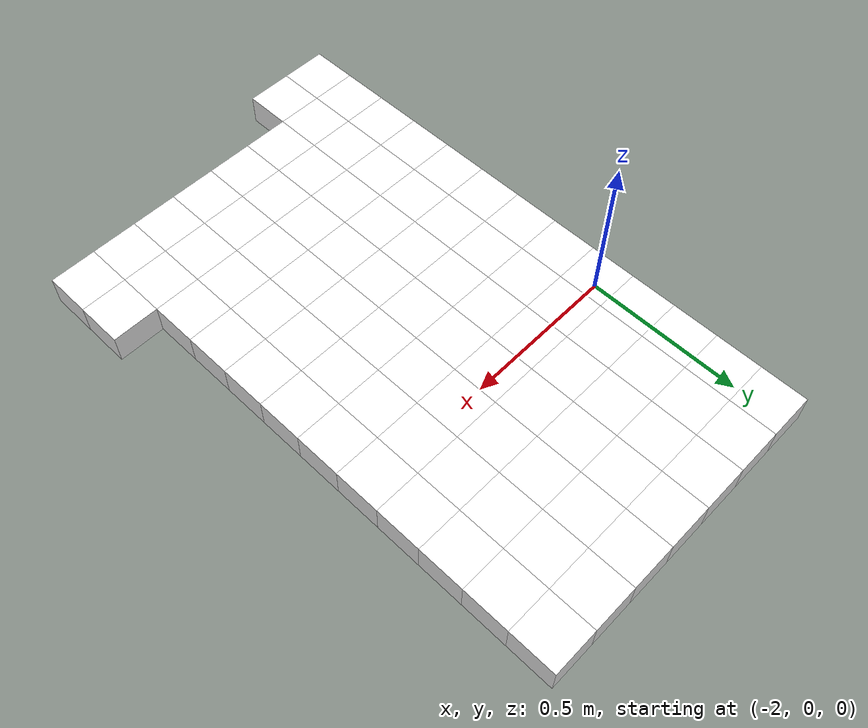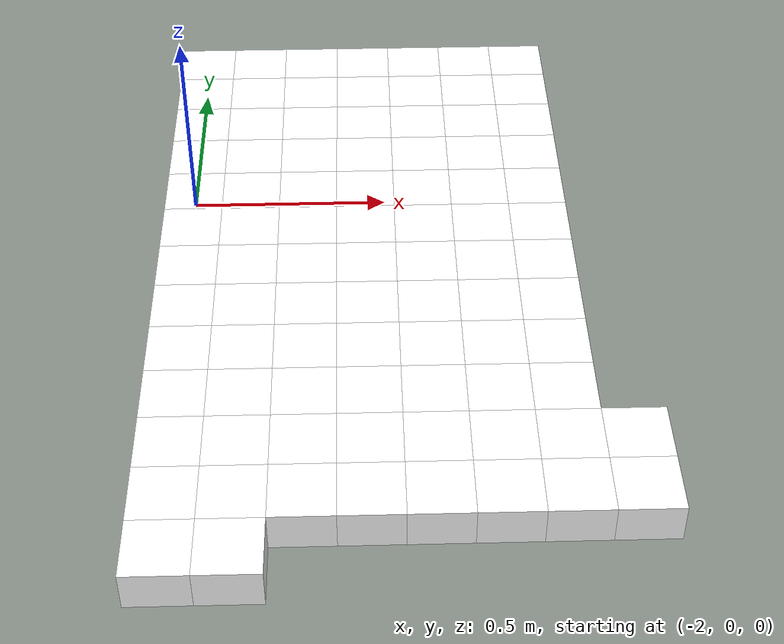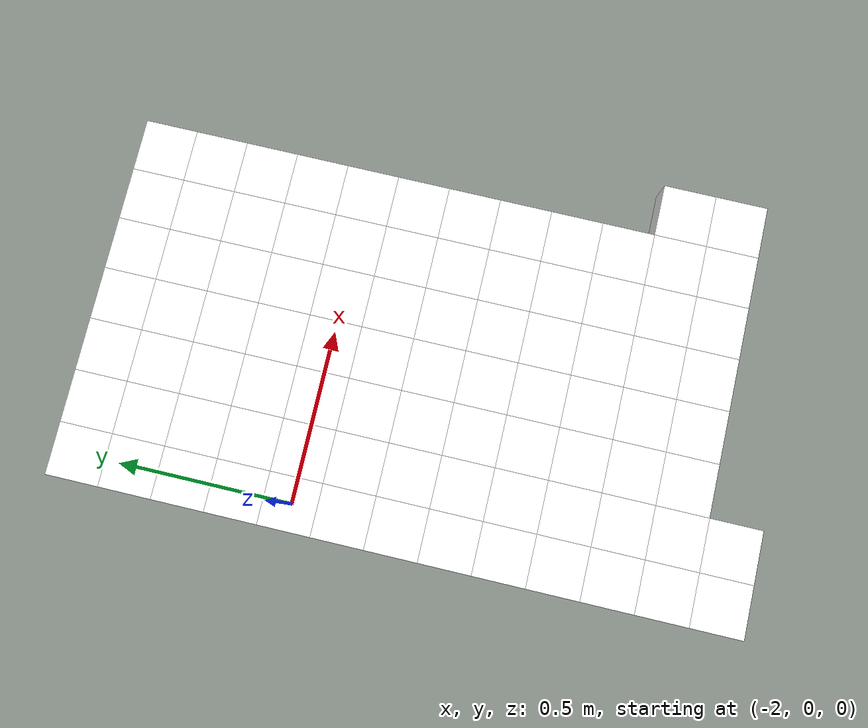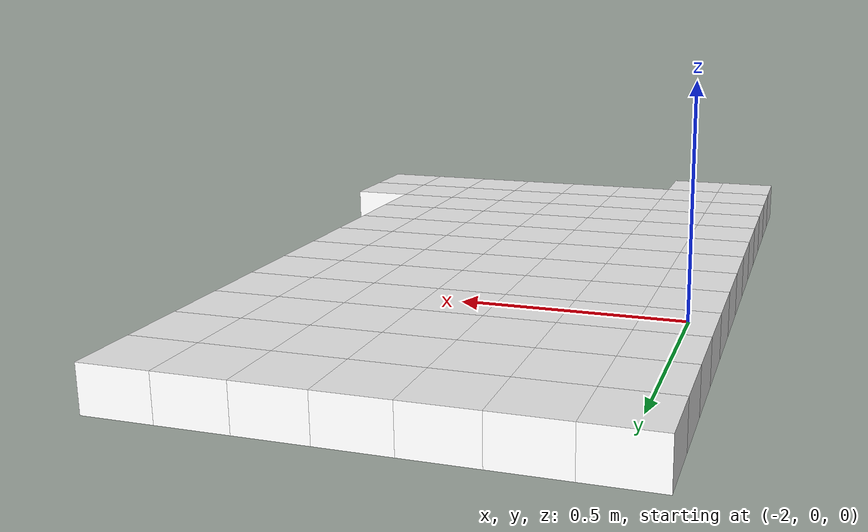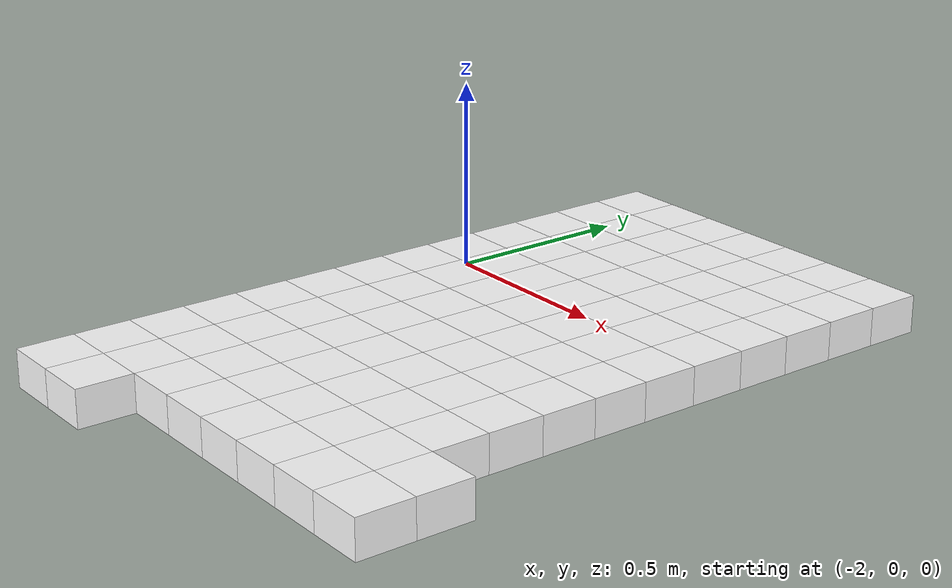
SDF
<sdf version="1.7">
 <world name="default">
  <include><uri>model://sun</uri></include>
  <model name="static_environment">
   <static>true</static>
   <link name="region_0">
    <pose>-2.0 0.6 0.0 0.0 0.0 4.7123</pose>
    <collision name="region_0_collision">
     <geometry><box><size>0.15 0.15 0.1</size></box></geometry>
     <surface><friction><ode><mu>1.0</mu><mu2>1.0</mu2></ode></friction></surface>
    </collision>
    <visual name="region_0_visual">
     <geometry><box><size>0.15 0.15 0.1</size></box></geometry>
     <material><ambient>1.0 1.0 1.0 1.0</ambient><diffuse>1.0 1.0 1.0 1.0</diffuse></material>
    </visual>
   </link>
   <link name="region_1">
    <pose>-2.0000133470576857 0.4500000005938132 0.0 0.0 0.0 4.7123</pose>
    <collision name="region_1_collision">
     <geometry><box><size>0.15 0.15 0.1</size></box></geometry>
     <surface><friction><ode><mu>1.0</mu><mu2>1.0</mu2></ode></friction></surface>
    </collision>
    <visual name="region_1_visual">
     <geometry><box><size>0.15 0.15 0.1</size></box></geometry>
     <material><ambient>1.0 1.0 1.0 1.0</ambient><diffuse>1.0 1.0 1.0 1.0</diffuse></material>
    </visual>
   </link>
   <link name="region_2">
    <pose>-2.000026694115372 0.3000000011876264 0.0 0.0 0.0 4.7123</pose>
    <collision name="region_2_collision">
     <geometry><box><size>0.15 0.15 0.1</size></box></geometry>
     <surface><friction><ode><mu>1.0</mu><mu2>1.0</mu2></ode></friction></surface>
    </collision>
    <visual name="region_2_visual">
     <geometry><box><size>0.15 0.15 0.1</size></box></geometry>
     <material><ambient>1.0 1.0 1.0 1.0</ambient><diffuse>1.0 1.0 1.0 1.0</diffuse></material>
    </visual>
   </link>
   <link name="region_3">
    <pose>-2.0000400411730577 0.15000000178143957 0.0 0.0 0.0 4.7123</pose>
    <collision name="region_3_collision">
     <geometry><box><size>0.15 0.15 0.1</size></box></geometry>
     <surface><friction><ode><mu>1.0</mu><mu2>1.0</mu2></ode></friction></surface>
    </collision>
    <visual name="region_3_visual">
     <geometry><box><size>0.15 0.15 0.1</size></box></geometry>
     <material><ambient>1.0 1.0 1.0 1.0</ambient><diffuse>1.0 1.0 1.0 1.0</diffuse></material>
    </visual>
   </link>
   <link name="region_4">
    <pose>-2.0000533882307434 2.3752527722464833e-09 0.0 0.0 0.0 4.7123</pose>
    <collision name="region_4_collision">
     <geometry><box><size>0.15 0.15 0.1</size></box></geometry>
     <surface><friction><ode><mu>1.0</mu><mu2>1.0</mu2></ode></friction></surface>
    </collision>
    <visual name="region_4_visual">
     <geometry><box><size>0.15 0.15 0.1</size></box></geometry>
     <material><ambient>1.0 1.0 1.0 1.0</ambient><diffuse>1.0 1.0 1.0 1.0</diffuse></material>
    </visual>
   </link>
   <link name="region_5">
    <pose>-2.0000667352884296 -0.14999999703093414 0.0 0.0 0.0 4.7123</pose>
    <collision name="region_5_collision">
     <geometry><box><size>0.15 0.15 0.1</size></box></geometry>
     <surface><friction><ode><mu>1.0</mu><mu2>1.0</mu2></ode></friction></surface>
    </collision>
    <visual name="region_5_visual">
     <geometry><box><size>0.15 0.15 0.1</size></box></geometry>
     <material><ambient>1.0 1.0 1.0 1.0</ambient><diffuse>1.0 1.0 1.0 1.0</diffuse></material>
    </visual>
   </link>
   <link name="region_6">
    <pose>-2.0000800823461153 -0.29999999643712094 0.0 0.0 0.0 4.7123</pose>
    <collision name="region_6_collision">
     <geometry><box><size>0.15 0.15 0.1</size></box></geometry>
     <surface><friction><ode><mu>1.0</mu><mu2>1.0</mu2></ode></friction></surface>
    </collision>
    <visual name="region_6_visual">
     <geometry><box><size>0.15 0.15 0.1</size></box></geometry>
     <material><ambient>1.0 1.0 1.0 1.0</ambient><diffuse>1.0 1.0 1.0 1.0</diffuse></material>
    </visual>
   </link>
   <link name="region_7">
    <pose>-2.000093429403801 -0.44999999584330774 0.0 0.0 0.0 4.7123</pose>
    <collision name="region_7_collision">
     <geometry><box><size>0.15 0.15 0.1</size></box></geometry>
     <surface><friction><ode><mu>1.0</mu><mu2>1.0</mu2></ode></friction></surface>
    </collision>
    <visual name="region_7_visual">
     <geometry><box><size>0.15 0.15 0.1</size></box></geometry>
     <material><ambient>1.0 1.0 1.0 1.0</ambient><diffuse>1.0 1.0 1.0 1.0</diffuse></material>
    </visual>
   </link>
   <link name="region_8">
    <pose>-2.000106776461487 -0.5999999952494944 0.0 0.0 0.0 4.7123</pose>
    <collision name="region_8_collision">
     <geometry><box><size>0.15 0.15 0.1</size></box></geometry>
     <surface><friction><ode><mu>1.0</mu><mu2>1.0</mu2></ode></friction></surface>
    </collision>
    <visual name="region_8_visual">
     <geometry><box><size>0.15 0.15 0.1</size></box></geometry>
     <material><ambient>1.0 1.0 1.0 1.0</ambient><diffuse>1.0 1.0 1.0 1.0</diffuse></material>
    </visual>
   </link>
   <link name="region_9">
    <pose>-2.000120123519173 -0.7499999946556813 0.0 0.0 0.0 4.7123</pose>
    <collision name="region_9_collision">
     <geometry><box><size>0.15 0.15 0.1</size></box></geometry>
     <surface><friction><ode><mu>1.0</mu><mu2>1.0</mu2></ode></friction></surface>
    </collision>
    <visual name="region_9_visual">
     <geometry><box><size>0.15 0.15 0.1</size></box></geometry>
     <material><ambient>1.0 1.0 1.0 1.0</ambient><diffuse>1.0 1.0 1.0 1.0</diffuse></material>
    </visual>
   </link>
   <link name="region_10">
    <pose>-2.0001334705768588 -0.899999994061868 0.0 0.0 0.0 4.7123</pose>
    <collision name="region_10_collision">
     <geometry><box><size>0.15 0.15 0.1</size></box></geometry>
     <surface><friction><ode><mu>1.0</mu><mu2>1.0</mu2></ode></friction></surface>
    </collision>
    <visual name="region_10_visual">
     <geometry><box><size>0.15 0.15 0.1</size></box></geometry>
     <material><ambient>1.0 1.0 1.0 1.0</ambient><diffuse>1.0 1.0 1.0 1.0</diffuse></material>
    </visual>
   </link>
   <link name="region_11">
    <pose>-2.0001468176345445 -1.0499999934680546 0.0 0.0 0.0 4.7123</pose>
    <collision name="region_11_collision">
     <geometry><box><size>0.15 0.15 0.1</size></box></geometry>
     <surface><friction><ode><mu>1.0</mu><mu2>1.0</mu2></ode></friction></surface>
    </collision>
    <visual name="region_11_visual">
     <geometry><box><size>0.15 0.15 0.1</size></box></geometry>
     <material><ambient>1.0 1.0 1.0 1.0</ambient><diffuse>1.0 1.0 1.0 1.0</diffuse></material>
    </visual>
   </link>
   <link name="region_12">
    <pose>-2.0001601646922307 -1.1999999928742415 0.0 0.0 0.0 4.7123</pose>
    <collision name="region_12_collision">
     <geometry><box><size>0.15 0.15 0.1</size></box></geometry>
     <surface><friction><ode><mu>1.0</mu><mu2>1.0</mu2></ode></friction></surface>
    </collision>
    <visual name="region_12_visual">
     <geometry><box><size>0.15 0.15 0.1</size></box></geometry>
     <material><ambient>1.0 1.0 1.0 1.0</ambient><diffuse>1.0 1.0 1.0 1.0</diffuse></material>
    </visual>
   </link>
   <link name="region_20">
    <pose>-1.850000000593813 0.5999866529423141 0.0 0.0 0.0 4.7123</pose>
    <collision name="region_20_collision">
     <geometry><box><size>0.15 0.15 0.1</size></box></geometry>
     <surface><friction><ode><mu>1.0</mu><mu2>1.0</mu2></ode></friction></surface>
    </collision>
    <visual name="region_20_visual">
     <geometry><box><size>0.15 0.15 0.1</size></box></geometry>
     <material><ambient>1.0 1.0 1.0 1.0</ambient><diffuse>1.0 1.0 1.0 1.0</diffuse></material>
    </visual>
   </link>
   <link name="region_21">
    <pose>-1.850013347651499 0.4499866535361273 0.0 0.0 0.0 4.7123</pose>
    <collision name="region_21_collision">
     <geometry><box><size>0.15 0.15 0.1</size></box></geometry>
     <surface><friction><ode><mu>1.0</mu><mu2>1.0</mu2></ode></friction></surface>
    </collision>
    <visual name="region_21_visual">
     <geometry><box><size>0.15 0.15 0.1</size></box></geometry>
     <material><ambient>1.0 1.0 1.0 1.0</ambient><diffuse>1.0 1.0 1.0 1.0</diffuse></material>
    </visual>
   </link>
   <link name="region_22">
    <pose>-1.850026694709185 0.29998665412994047 0.0 0.0 0.0 4.7123</pose>
    <collision name="region_22_collision">
     <geometry><box><size>0.15 0.15 0.1</size></box></geometry>
     <surface><friction><ode><mu>1.0</mu><mu2>1.0</mu2></ode></friction></surface>
    </collision>
    <visual name="region_22_visual">
     <geometry><box><size>0.15 0.15 0.1</size></box></geometry>
     <material><ambient>1.0 1.0 1.0 1.0</ambient><diffuse>1.0 1.0 1.0 1.0</diffuse></material>
    </visual>
   </link>
   <link name="region_23">
    <pose>-1.8500400417668708 0.14998665472375367 0.0 0.0 0.0 4.7123</pose>
    <collision name="region_23_collision">
     <geometry><box><size>0.15 0.15 0.1</size></box></geometry>
     <surface><friction><ode><mu>1.0</mu><mu2>1.0</mu2></ode></friction></surface>
    </collision>
    <visual name="region_23_visual">
     <geometry><box><size>0.15 0.15 0.1</size></box></geometry>
     <material><ambient>1.0 1.0 1.0 1.0</ambient><diffuse>1.0 1.0 1.0 1.0</diffuse></material>
    </visual>
   </link>
   <link name="region_24">
    <pose>-1.8500533888245567 -1.3344682433191757e-05 0.0 0.0 0.0 4.7123</pose>
    <collision name="region_24_collision">
     <geometry><box><size>0.15 0.15 0.1</size></box></geometry>
     <surface><friction><ode><mu>1.0</mu><mu2>1.0</mu2></ode></friction></surface>
    </collision>
    <visual name="region_24_visual">
     <geometry><box><size>0.15 0.15 0.1</size></box></geometry>
     <material><ambient>1.0 1.0 1.0 1.0</ambient><diffuse>1.0 1.0 1.0 1.0</diffuse></material>
    </visual>
   </link>
   <link name="region_25">
    <pose>-1.8500667358822427 -0.15001334408862 0.0 0.0 0.0 4.7123</pose>
    <collision name="region_25_collision">
     <geometry><box><size>0.15 0.15 0.1</size></box></geometry>
     <surface><friction><ode><mu>1.0</mu><mu2>1.0</mu2></ode></friction></surface>
    </collision>
    <visual name="region_25_visual">
     <geometry><box><size>0.15 0.15 0.1</size></box></geometry>
     <material><ambient>1.0 1.0 1.0 1.0</ambient><diffuse>1.0 1.0 1.0 1.0</diffuse></material>
    </visual>
   </link>
   <link name="region_26">
    <pose>-1.8500800829399284 -0.3000133434948068 0.0 0.0 0.0 4.7123</pose>
    <collision name="region_26_collision">
     <geometry><box><size>0.15 0.15 0.1</size></box></geometry>
     <surface><friction><ode><mu>1.0</mu><mu2>1.0</mu2></ode></friction></surface>
    </collision>
    <visual name="region_26_visual">
     <geometry><box><size>0.15 0.15 0.1</size></box></geometry>
     <material><ambient>1.0 1.0 1.0 1.0</ambient><diffuse>1.0 1.0 1.0 1.0</diffuse></material>
    </visual>
   </link>
   <link name="region_27">
    <pose>-1.8500934299976144 -0.4500133429009937 0.0 0.0 0.0 4.7123</pose>
    <collision name="region_27_collision">
     <geometry><box><size>0.15 0.15 0.1</size></box></geometry>
     <surface><friction><ode><mu>1.0</mu><mu2>1.0</mu2></ode></friction></surface>
    </collision>
    <visual name="region_27_visual">
     <geometry><box><size>0.15 0.15 0.1</size></box></geometry>
     <material><ambient>1.0 1.0 1.0 1.0</ambient><diffuse>1.0 1.0 1.0 1.0</diffuse></material>
    </visual>
   </link>
   <link name="region_28">
    <pose>-1.8501067770553001 -0.6000133423071804 0.0 0.0 0.0 4.7123</pose>
    <collision name="region_28_collision">
     <geometry><box><size>0.15 0.15 0.1</size></box></geometry>
     <surface><friction><ode><mu>1.0</mu><mu2>1.0</mu2></ode></friction></surface>
    </collision>
    <visual name="region_28_visual">
     <geometry><box><size>0.15 0.15 0.1</size></box></geometry>
     <material><ambient>1.0 1.0 1.0 1.0</ambient><diffuse>1.0 1.0 1.0 1.0</diffuse></material>
    </visual>
   </link>
   <link name="region_29">
    <pose>-1.850120124112986 -0.7500133417133671 0.0 0.0 0.0 4.7123</pose>
    <collision name="region_29_collision">
     <geometry><box><size>0.15 0.15 0.1</size></box></geometry>
     <surface><friction><ode><mu>1.0</mu><mu2>1.0</mu2></ode></friction></surface>
    </collision>
    <visual name="region_29_visual">
     <geometry><box><size>0.15 0.15 0.1</size></box></geometry>
     <material><ambient>1.0 1.0 1.0 1.0</ambient><diffuse>1.0 1.0 1.0 1.0</diffuse></material>
    </visual>
   </link>
   <link name="region_30">
    <pose>-1.8501334711706718 -0.9000133411195538 0.0 0.0 0.0 4.7123</pose>
    <collision name="region_30_collision">
     <geometry><box><size>0.15 0.15 0.1</size></box></geometry>
     <surface><friction><ode><mu>1.0</mu><mu2>1.0</mu2></ode></friction></surface>
    </collision>
    <visual name="region_30_visual">
     <geometry><box><size>0.15 0.15 0.1</size></box></geometry>
     <material><ambient>1.0 1.0 1.0 1.0</ambient><diffuse>1.0 1.0 1.0 1.0</diffuse></material>
    </visual>
   </link>
   <link name="region_31">
    <pose>-1.8501468182283578 -1.0500133405257408 0.0 0.0 0.0 4.7123</pose>
    <collision name="region_31_collision">
     <geometry><box><size>0.15 0.15 0.1</size></box></geometry>
     <surface><friction><ode><mu>1.0</mu><mu2>1.0</mu2></ode></friction></surface>
    </collision>
    <visual name="region_31_visual">
     <geometry><box><size>0.15 0.15 0.1</size></box></geometry>
     <material><ambient>1.0 1.0 1.0 1.0</ambient><diffuse>1.0 1.0 1.0 1.0</diffuse></material>
    </visual>
   </link>
   <link name="region_32">
    <pose>-1.8501601652860438 -1.2000133399319273 0.0 0.0 0.0 4.7123</pose>
    <collision name="region_32_collision">
     <geometry><box><size>0.15 0.15 0.1</size></box></geometry>
     <surface><friction><ode><mu>1.0</mu><mu2>1.0</mu2></ode></friction></surface>
    </collision>
    <visual name="region_32_visual">
     <geometry><box><size>0.15 0.15 0.1</size></box></geometry>
     <material><ambient>1.0 1.0 1.0 1.0</ambient><diffuse>1.0 1.0 1.0 1.0</diffuse></material>
    </visual>
   </link>
   <link name="region_40">
    <pose>-1.7000000011876264 0.5999733058846283 0.0 0.0 0.0 4.7123</pose>
    <collision name="region_40_collision">
     <geometry><box><size>0.15 0.15 0.1</size></box></geometry>
     <surface><friction><ode><mu>1.0</mu><mu2>1.0</mu2></ode></friction></surface>
    </collision>
    <visual name="region_40_visual">
     <geometry><box><size>0.15 0.15 0.1</size></box></geometry>
     <material><ambient>1.0 1.0 1.0 1.0</ambient><diffuse>1.0 1.0 1.0 1.0</diffuse></material>
    </visual>
   </link>
   <link name="region_41">
    <pose>-1.7000133482453124 0.4499733064784414 0.0 0.0 0.0 4.7123</pose>
    <collision name="region_41_collision">
     <geometry><box><size>0.15 0.15 0.1</size></box></geometry>
     <surface><friction><ode><mu>1.0</mu><mu2>1.0</mu2></ode></friction></surface>
    </collision>
    <visual name="region_41_visual">
     <geometry><box><size>0.15 0.15 0.1</size></box></geometry>
     <material><ambient>1.0 1.0 1.0 1.0</ambient><diffuse>1.0 1.0 1.0 1.0</diffuse></material>
    </visual>
   </link>
   <link name="region_42">
    <pose>-1.700026695302998 0.2999733070722546 0.0 0.0 0.0 4.7123</pose>
    <collision name="region_42_collision">
     <geometry><box><size>0.15 0.15 0.1</size></box></geometry>
     <surface><friction><ode><mu>1.0</mu><mu2>1.0</mu2></ode></friction></surface>
    </collision>
    <visual name="region_42_visual">
     <geometry><box><size>0.15 0.15 0.1</size></box></geometry>
     <material><ambient>1.0 1.0 1.0 1.0</ambient><diffuse>1.0 1.0 1.0 1.0</diffuse></material>
    </visual>
   </link>
   <link name="region_43">
    <pose>-1.700040042360684 0.1499733076660678 0.0 0.0 0.0 4.7123</pose>
    <collision name="region_43_collision">
     <geometry><box><size>0.15 0.15 0.1</size></box></geometry>
     <surface><friction><ode><mu>1.0</mu><mu2>1.0</mu2></ode></friction></surface>
    </collision>
    <visual name="region_43_visual">
     <geometry><box><size>0.15 0.15 0.1</size></box></geometry>
     <material><ambient>1.0 1.0 1.0 1.0</ambient><diffuse>1.0 1.0 1.0 1.0</diffuse></material>
    </visual>
   </link>
   <link name="region_44">
    <pose>-1.70005338941837 -2.6691740119044738e-05 0.0 0.0 0.0 4.7123</pose>
    <collision name="region_44_collision">
     <geometry><box><size>0.15 0.15 0.1</size></box></geometry>
     <surface><friction><ode><mu>1.0</mu><mu2>1.0</mu2></ode></friction></surface>
    </collision>
    <visual name="region_44_visual">
     <geometry><box><size>0.15 0.15 0.1</size></box></geometry>
     <material><ambient>1.0 1.0 1.0 1.0</ambient><diffuse>1.0 1.0 1.0 1.0</diffuse></material>
    </visual>
   </link>
   <link name="region_45">
    <pose>-1.7000667364760558 -0.15002669114630585 0.0 0.0 0.0 4.7123</pose>
    <collision name="region_45_collision">
     <geometry><box><size>0.15 0.15 0.1</size></box></geometry>
     <surface><friction><ode><mu>1.0</mu><mu2>1.0</mu2></ode></friction></surface>
    </collision>
    <visual name="region_45_visual">
     <geometry><box><size>0.15 0.15 0.1</size></box></geometry>
     <material><ambient>1.0 1.0 1.0 1.0</ambient><diffuse>1.0 1.0 1.0 1.0</diffuse></material>
    </visual>
   </link>
   <link name="region_46">
    <pose>-1.7000800835337415 -0.30002669055249276 0.0 0.0 0.0 4.7123</pose>
    <collision name="region_46_collision">
     <geometry><box><size>0.15 0.15 0.1</size></box></geometry>
     <surface><friction><ode><mu>1.0</mu><mu2>1.0</mu2></ode></friction></surface>
    </collision>
    <visual name="region_46_visual">
     <geometry><box><size>0.15 0.15 0.1</size></box></geometry>
     <material><ambient>1.0 1.0 1.0 1.0</ambient><diffuse>1.0 1.0 1.0 1.0</diffuse></material>
    </visual>
   </link>
   <link name="region_47">
    <pose>-1.7000934305914275 -0.45002668995867945 0.0 0.0 0.0 4.7123</pose>
    <collision name="region_47_collision">
     <geometry><box><size>0.15 0.15 0.1</size></box></geometry>
     <surface><friction><ode><mu>1.0</mu><mu2>1.0</mu2></ode></friction></surface>
    </collision>
    <visual name="region_47_visual">
     <geometry><box><size>0.15 0.15 0.1</size></box></geometry>
     <material><ambient>1.0 1.0 1.0 1.0</ambient><diffuse>1.0 1.0 1.0 1.0</diffuse></material>
    </visual>
   </link>
   <link name="region_48">
    <pose>-1.7001067776491134 -0.6000266893648664 0.0 0.0 0.0 4.7123</pose>
    <collision name="region_48_collision">
     <geometry><box><size>0.15 0.15 0.1</size></box></geometry>
     <surface><friction><ode><mu>1.0</mu><mu2>1.0</mu2></ode></friction></surface>
    </collision>
    <visual name="region_48_visual">
     <geometry><box><size>0.15 0.15 0.1</size></box></geometry>
     <material><ambient>1.0 1.0 1.0 1.0</ambient><diffuse>1.0 1.0 1.0 1.0</diffuse></material>
    </visual>
   </link>
   <link name="region_49">
    <pose>-1.7001201247067992 -0.750026688771053 0.0 0.0 0.0 4.7123</pose>
    <collision name="region_49_collision">
     <geometry><box><size>0.15 0.15 0.1</size></box></geometry>
     <surface><friction><ode><mu>1.0</mu><mu2>1.0</mu2></ode></friction></surface>
    </collision>
    <visual name="region_49_visual">
     <geometry><box><size>0.15 0.15 0.1</size></box></geometry>
     <material><ambient>1.0 1.0 1.0 1.0</ambient><diffuse>1.0 1.0 1.0 1.0</diffuse></material>
    </visual>
   </link>
   <link name="region_50">
    <pose>-1.7001334717644851 -0.9000266881772397 0.0 0.0 0.0 4.7123</pose>
    <collision name="region_50_collision">
     <geometry><box><size>0.15 0.15 0.1</size></box></geometry>
     <surface><friction><ode><mu>1.0</mu><mu2>1.0</mu2></ode></friction></surface>
    </collision>
    <visual name="region_50_visual">
     <geometry><box><size>0.15 0.15 0.1</size></box></geometry>
     <material><ambient>1.0 1.0 1.0 1.0</ambient><diffuse>1.0 1.0 1.0 1.0</diffuse></material>
    </visual>
   </link>
   <link name="region_51">
    <pose>-1.7001468188221711 -1.0500266875834265 0.0 0.0 0.0 4.7123</pose>
    <collision name="region_51_collision">
     <geometry><box><size>0.15 0.15 0.1</size></box></geometry>
     <surface><friction><ode><mu>1.0</mu><mu2>1.0</mu2></ode></friction></surface>
    </collision>
    <visual name="region_51_visual">
     <geometry><box><size>0.15 0.15 0.1</size></box></geometry>
     <material><ambient>1.0 1.0 1.0 1.0</ambient><diffuse>1.0 1.0 1.0 1.0</diffuse></material>
    </visual>
   </link>
   <link name="region_60">
    <pose>-1.5500000017814397 0.5999599588269423 0.0 0.0 0.0 4.7123</pose>
    <collision name="region_60_collision">
     <geometry><box><size>0.15 0.15 0.1</size></box></geometry>
     <surface><friction><ode><mu>1.0</mu><mu2>1.0</mu2></ode></friction></surface>
    </collision>
    <visual name="region_60_visual">
     <geometry><box><size>0.15 0.15 0.1</size></box></geometry>
     <material><ambient>1.0 1.0 1.0 1.0</ambient><diffuse>1.0 1.0 1.0 1.0</diffuse></material>
    </visual>
   </link>
   <link name="region_61">
    <pose>-1.5500133488391254 0.4499599594207555 0.0 0.0 0.0 4.7123</pose>
    <collision name="region_61_collision">
     <geometry><box><size>0.15 0.15 0.1</size></box></geometry>
     <surface><friction><ode><mu>1.0</mu><mu2>1.0</mu2></ode></friction></surface>
    </collision>
    <visual name="region_61_visual">
     <geometry><box><size>0.15 0.15 0.1</size></box></geometry>
     <material><ambient>1.0 1.0 1.0 1.0</ambient><diffuse>1.0 1.0 1.0 1.0</diffuse></material>
    </visual>
   </link>
   <link name="region_62">
    <pose>-1.5500266958968114 0.2999599600145687 0.0 0.0 0.0 4.7123</pose>
    <collision name="region_62_collision">
     <geometry><box><size>0.15 0.15 0.1</size></box></geometry>
     <surface><friction><ode><mu>1.0</mu><mu2>1.0</mu2></ode></friction></surface>
    </collision>
    <visual name="region_62_visual">
     <geometry><box><size>0.15 0.15 0.1</size></box></geometry>
     <material><ambient>1.0 1.0 1.0 1.0</ambient><diffuse>1.0 1.0 1.0 1.0</diffuse></material>
    </visual>
   </link>
   <link name="region_63">
    <pose>-1.5500400429544972 0.14995996060838196 0.0 0.0 0.0 4.7123</pose>
    <collision name="region_63_collision">
     <geometry><box><size>0.15 0.15 0.1</size></box></geometry>
     <surface><friction><ode><mu>1.0</mu><mu2>1.0</mu2></ode></friction></surface>
    </collision>
    <visual name="region_63_visual">
     <geometry><box><size>0.15 0.15 0.1</size></box></geometry>
     <material><ambient>1.0 1.0 1.0 1.0</ambient><diffuse>1.0 1.0 1.0 1.0</diffuse></material>
    </visual>
   </link>
   <link name="region_64">
    <pose>-1.5500533900121831 -4.003879780489772e-05 0.0 0.0 0.0 4.7123</pose>
    <collision name="region_64_collision">
     <geometry><box><size>0.15 0.15 0.1</size></box></geometry>
     <surface><friction><ode><mu>1.0</mu><mu2>1.0</mu2></ode></friction></surface>
    </collision>
    <visual name="region_64_visual">
     <geometry><box><size>0.15 0.15 0.1</size></box></geometry>
     <material><ambient>1.0 1.0 1.0 1.0</ambient><diffuse>1.0 1.0 1.0 1.0</diffuse></material>
    </visual>
   </link>
   <link name="region_65">
    <pose>-1.5500667370698689 -0.1500400382039917 0.0 0.0 0.0 4.7123</pose>
    <collision name="region_65_collision">
     <geometry><box><size>0.15 0.15 0.1</size></box></geometry>
     <surface><friction><ode><mu>1.0</mu><mu2>1.0</mu2></ode></friction></surface>
    </collision>
    <visual name="region_65_visual">
     <geometry><box><size>0.15 0.15 0.1</size></box></geometry>
     <material><ambient>1.0 1.0 1.0 1.0</ambient><diffuse>1.0 1.0 1.0 1.0</diffuse></material>
    </visual>
   </link>
   <link name="region_66">
    <pose>-1.5500800841275548 -0.3000400376101786 0.0 0.0 0.0 4.7123</pose>
    <collision name="region_66_collision">
     <geometry><box><size>0.15 0.15 0.1</size></box></geometry>
     <surface><friction><ode><mu>1.0</mu><mu2>1.0</mu2></ode></friction></surface>
    </collision>
    <visual name="region_66_visual">
     <geometry><box><size>0.15 0.15 0.1</size></box></geometry>
     <material><ambient>1.0 1.0 1.0 1.0</ambient><diffuse>1.0 1.0 1.0 1.0</diffuse></material>
    </visual>
   </link>
   <link name="region_67">
    <pose>-1.5500934311852408 -0.4500400370163654 0.0 0.0 0.0 4.7123</pose>
    <collision name="region_67_collision">
     <geometry><box><size>0.15 0.15 0.1</size></box></geometry>
     <surface><friction><ode><mu>1.0</mu><mu2>1.0</mu2></ode></friction></surface>
    </collision>
    <visual name="region_67_visual">
     <geometry><box><size>0.15 0.15 0.1</size></box></geometry>
     <material><ambient>1.0 1.0 1.0 1.0</ambient><diffuse>1.0 1.0 1.0 1.0</diffuse></material>
    </visual>
   </link>
   <link name="region_68">
    <pose>-1.5501067782429265 -0.6000400364225521 0.0 0.0 0.0 4.7123</pose>
    <collision name="region_68_collision">
     <geometry><box><size>0.15 0.15 0.1</size></box></geometry>
     <surface><friction><ode><mu>1.0</mu><mu2>1.0</mu2></ode></friction></surface>
    </collision>
    <visual name="region_68_visual">
     <geometry><box><size>0.15 0.15 0.1</size></box></geometry>
     <material><ambient>1.0 1.0 1.0 1.0</ambient><diffuse>1.0 1.0 1.0 1.0</diffuse></material>
    </visual>
   </link>
   <link name="region_69">
    <pose>-1.5501201253006125 -0.7500400358287388 0.0 0.0 0.0 4.7123</pose>
    <collision name="region_69_collision">
     <geometry><box><size>0.15 0.15 0.1</size></box></geometry>
     <surface><friction><ode><mu>1.0</mu><mu2>1.0</mu2></ode></friction></surface>
    </collision>
    <visual name="region_69_visual">
     <geometry><box><size>0.15 0.15 0.1</size></box></geometry>
     <material><ambient>1.0 1.0 1.0 1.0</ambient><diffuse>1.0 1.0 1.0 1.0</diffuse></material>
    </visual>
   </link>
   <link name="region_70">
    <pose>-1.5501334723582985 -0.9000400352349257 0.0 0.0 0.0 4.7123</pose>
    <collision name="region_70_collision">
     <geometry><box><size>0.15 0.15 0.1</size></box></geometry>
     <surface><friction><ode><mu>1.0</mu><mu2>1.0</mu2></ode></friction></surface>
    </collision>
    <visual name="region_70_visual">
     <geometry><box><size>0.15 0.15 0.1</size></box></geometry>
     <material><ambient>1.0 1.0 1.0 1.0</ambient><diffuse>1.0 1.0 1.0 1.0</diffuse></material>
    </visual>
   </link>
   <link name="region_71">
    <pose>-1.5501468194159842 -1.0500400346411123 0.0 0.0 0.0 4.7123</pose>
    <collision name="region_71_collision">
     <geometry><box><size>0.15 0.15 0.1</size></box></geometry>
     <surface><friction><ode><mu>1.0</mu><mu2>1.0</mu2></ode></friction></surface>
    </collision>
    <visual name="region_71_visual">
     <geometry><box><size>0.15 0.15 0.1</size></box></geometry>
     <material><ambient>1.0 1.0 1.0 1.0</ambient><diffuse>1.0 1.0 1.0 1.0</diffuse></material>
    </visual>
   </link>
   <link name="region_80">
    <pose>-1.4000000023752528 0.5999466117692565 0.0 0.0 0.0 4.7123</pose>
    <collision name="region_80_collision">
     <geometry><box><size>0.15 0.15 0.1</size></box></geometry>
     <surface><friction><ode><mu>1.0</mu><mu2>1.0</mu2></ode></friction></surface>
    </collision>
    <visual name="region_80_visual">
     <geometry><box><size>0.15 0.15 0.1</size></box></geometry>
     <material><ambient>1.0 1.0 1.0 1.0</ambient><diffuse>1.0 1.0 1.0 1.0</diffuse></material>
    </visual>
   </link>
   <link name="region_81">
    <pose>-1.4000133494329385 0.44994661236306965 0.0 0.0 0.0 4.7123</pose>
    <collision name="region_81_collision">
     <geometry><box><size>0.15 0.15 0.1</size></box></geometry>
     <surface><friction><ode><mu>1.0</mu><mu2>1.0</mu2></ode></friction></surface>
    </collision>
    <visual name="region_81_visual">
     <geometry><box><size>0.15 0.15 0.1</size></box></geometry>
     <material><ambient>1.0 1.0 1.0 1.0</ambient><diffuse>1.0 1.0 1.0 1.0</diffuse></material>
    </visual>
   </link>
   <link name="region_82">
    <pose>-1.4000266964906245 0.29994661295688285 0.0 0.0 0.0 4.7123</pose>
    <collision name="region_82_collision">
     <geometry><box><size>0.15 0.15 0.1</size></box></geometry>
     <surface><friction><ode><mu>1.0</mu><mu2>1.0</mu2></ode></friction></surface>
    </collision>
    <visual name="region_82_visual">
     <geometry><box><size>0.15 0.15 0.1</size></box></geometry>
     <material><ambient>1.0 1.0 1.0 1.0</ambient><diffuse>1.0 1.0 1.0 1.0</diffuse></material>
    </visual>
   </link>
   <link name="region_83">
    <pose>-1.4000400435483105 0.14994661355069605 0.0 0.0 0.0 4.7123</pose>
    <collision name="region_83_collision">
     <geometry><box><size>0.15 0.15 0.1</size></box></geometry>
     <surface><friction><ode><mu>1.0</mu><mu2>1.0</mu2></ode></friction></surface>
    </collision>
    <visual name="region_83_visual">
     <geometry><box><size>0.15 0.15 0.1</size></box></geometry>
     <material><ambient>1.0 1.0 1.0 1.0</ambient><diffuse>1.0 1.0 1.0 1.0</diffuse></material>
    </visual>
   </link>
   <link name="region_84">
    <pose>-1.4000533906059962 -5.33858554907507e-05 0.0 0.0 0.0 4.7123</pose>
    <collision name="region_84_collision">
     <geometry><box><size>0.15 0.15 0.1</size></box></geometry>
     <surface><friction><ode><mu>1.0</mu><mu2>1.0</mu2></ode></friction></surface>
    </collision>
    <visual name="region_84_visual">
     <geometry><box><size>0.15 0.15 0.1</size></box></geometry>
     <material><ambient>1.0 1.0 1.0 1.0</ambient><diffuse>1.0 1.0 1.0 1.0</diffuse></material>
    </visual>
   </link>
   <link name="region_85">
    <pose>-1.4000667376636822 -0.15005338526167766 0.0 0.0 0.0 4.7123</pose>
    <collision name="region_85_collision">
     <geometry><box><size>0.15 0.15 0.1</size></box></geometry>
     <surface><friction><ode><mu>1.0</mu><mu2>1.0</mu2></ode></friction></surface>
    </collision>
    <visual name="region_85_visual">
     <geometry><box><size>0.15 0.15 0.1</size></box></geometry>
     <material><ambient>1.0 1.0 1.0 1.0</ambient><diffuse>1.0 1.0 1.0 1.0</diffuse></material>
    </visual>
   </link>
   <link name="region_86">
    <pose>-1.4000800847213681 -0.30005338466786446 0.0 0.0 0.0 4.7123</pose>
    <collision name="region_86_collision">
     <geometry><box><size>0.15 0.15 0.1</size></box></geometry>
     <surface><friction><ode><mu>1.0</mu><mu2>1.0</mu2></ode></friction></surface>
    </collision>
    <visual name="region_86_visual">
     <geometry><box><size>0.15 0.15 0.1</size></box></geometry>
     <material><ambient>1.0 1.0 1.0 1.0</ambient><diffuse>1.0 1.0 1.0 1.0</diffuse></material>
    </visual>
   </link>
   <link name="region_87">
    <pose>-1.4000934317790539 -0.4500533840740514 0.0 0.0 0.0 4.7123</pose>
    <collision name="region_87_collision">
     <geometry><box><size>0.15 0.15 0.1</size></box></geometry>
     <surface><friction><ode><mu>1.0</mu><mu2>1.0</mu2></ode></friction></surface>
    </collision>
    <visual name="region_87_visual">
     <geometry><box><size>0.15 0.15 0.1</size></box></geometry>
     <material><ambient>1.0 1.0 1.0 1.0</ambient><diffuse>1.0 1.0 1.0 1.0</diffuse></material>
    </visual>
   </link>
   <link name="region_88">
    <pose>-1.4001067788367398 -0.6000533834802381 0.0 0.0 0.0 4.7123</pose>
    <collision name="region_88_collision">
     <geometry><box><size>0.15 0.15 0.1</size></box></geometry>
     <surface><friction><ode><mu>1.0</mu><mu2>1.0</mu2></ode></friction></surface>
    </collision>
    <visual name="region_88_visual">
     <geometry><box><size>0.15 0.15 0.1</size></box></geometry>
     <material><ambient>1.0 1.0 1.0 1.0</ambient><diffuse>1.0 1.0 1.0 1.0</diffuse></material>
    </visual>
   </link>
   <link name="region_89">
    <pose>-1.4001201258944258 -0.7500533828864248 0.0 0.0 0.0 4.7123</pose>
    <collision name="region_89_collision">
     <geometry><box><size>0.15 0.15 0.1</size></box></geometry>
     <surface><friction><ode><mu>1.0</mu><mu2>1.0</mu2></ode></friction></surface>
    </collision>
    <visual name="region_89_visual">
     <geometry><box><size>0.15 0.15 0.1</size></box></geometry>
     <material><ambient>1.0 1.0 1.0 1.0</ambient><diffuse>1.0 1.0 1.0 1.0</diffuse></material>
    </visual>
   </link>
   <link name="region_90">
    <pose>-1.4001334729521115 -0.9000533822926114 0.0 0.0 0.0 4.7123</pose>
    <collision name="region_90_collision">
     <geometry><box><size>0.15 0.15 0.1</size></box></geometry>
     <surface><friction><ode><mu>1.0</mu><mu2>1.0</mu2></ode></friction></surface>
    </collision>
    <visual name="region_90_visual">
     <geometry><box><size>0.15 0.15 0.1</size></box></geometry>
     <material><ambient>1.0 1.0 1.0 1.0</ambient><diffuse>1.0 1.0 1.0 1.0</diffuse></material>
    </visual>
   </link>
   <link name="region_91">
    <pose>-1.4001468200097973 -1.050053381698798 0.0 0.0 0.0 4.7123</pose>
    <collision name="region_91_collision">
     <geometry><box><size>0.15 0.15 0.1</size></box></geometry>
     <surface><friction><ode><mu>1.0</mu><mu2>1.0</mu2></ode></friction></surface>
    </collision>
    <visual name="region_91_visual">
     <geometry><box><size>0.15 0.15 0.1</size></box></geometry>
     <material><ambient>1.0 1.0 1.0 1.0</ambient><diffuse>1.0 1.0 1.0 1.0</diffuse></material>
    </visual>
   </link>
   <link name="region_100">
    <pose>-1.2500000029690659 0.5999332647115706 0.0 0.0 0.0 4.7123</pose>
    <collision name="region_100_collision">
     <geometry><box><size>0.15 0.15 0.1</size></box></geometry>
     <surface><friction><ode><mu>1.0</mu><mu2>1.0</mu2></ode></friction></surface>
    </collision>
    <visual name="region_100_visual">
     <geometry><box><size>0.15 0.15 0.1</size></box></geometry>
     <material><ambient>1.0 1.0 1.0 1.0</ambient><diffuse>1.0 1.0 1.0 1.0</diffuse></material>
    </visual>
   </link>
   <link name="region_101">
    <pose>-1.2500133500267516 0.4499332653053838 0.0 0.0 0.0 4.7123</pose>
    <collision name="region_101_collision">
     <geometry><box><size>0.15 0.15 0.1</size></box></geometry>
     <surface><friction><ode><mu>1.0</mu><mu2>1.0</mu2></ode></friction></surface>
    </collision>
    <visual name="region_101_visual">
     <geometry><box><size>0.15 0.15 0.1</size></box></geometry>
     <material><ambient>1.0 1.0 1.0 1.0</ambient><diffuse>1.0 1.0 1.0 1.0</diffuse></material>
    </visual>
   </link>
   <link name="region_102">
    <pose>-1.2500266970844376 0.299933265899197 0.0 0.0 0.0 4.7123</pose>
    <collision name="region_102_collision">
     <geometry><box><size>0.15 0.15 0.1</size></box></geometry>
     <surface><friction><ode><mu>1.0</mu><mu2>1.0</mu2></ode></friction></surface>
    </collision>
    <visual name="region_102_visual">
     <geometry><box><size>0.15 0.15 0.1</size></box></geometry>
     <material><ambient>1.0 1.0 1.0 1.0</ambient><diffuse>1.0 1.0 1.0 1.0</diffuse></material>
    </visual>
   </link>
   <link name="region_103">
    <pose>-1.2500400441421236 0.1499332664930102 0.0 0.0 0.0 4.7123</pose>
    <collision name="region_103_collision">
     <geometry><box><size>0.15 0.15 0.1</size></box></geometry>
     <surface><friction><ode><mu>1.0</mu><mu2>1.0</mu2></ode></friction></surface>
    </collision>
    <visual name="region_103_visual">
     <geometry><box><size>0.15 0.15 0.1</size></box></geometry>
     <material><ambient>1.0 1.0 1.0 1.0</ambient><diffuse>1.0 1.0 1.0 1.0</diffuse></material>
    </visual>
   </link>
   <link name="region_104">
    <pose>-1.2500533911998093 -6.673291317660368e-05 0.0 0.0 0.0 4.7123</pose>
    <collision name="region_104_collision">
     <geometry><box><size>0.15 0.15 0.1</size></box></geometry>
     <surface><friction><ode><mu>1.0</mu><mu2>1.0</mu2></ode></friction></surface>
    </collision>
    <visual name="region_104_visual">
     <geometry><box><size>0.15 0.15 0.1</size></box></geometry>
     <material><ambient>1.0 1.0 1.0 1.0</ambient><diffuse>1.0 1.0 1.0 1.0</diffuse></material>
    </visual>
   </link>
   <link name="region_105">
    <pose>-1.2500667382574953 -0.15006673231936352 0.0 0.0 0.0 4.7123</pose>
    <collision name="region_105_collision">
     <geometry><box><size>0.15 0.15 0.1</size></box></geometry>
     <surface><friction><ode><mu>1.0</mu><mu2>1.0</mu2></ode></friction></surface>
    </collision>
    <visual name="region_105_visual">
     <geometry><box><size>0.15 0.15 0.1</size></box></geometry>
     <material><ambient>1.0 1.0 1.0 1.0</ambient><diffuse>1.0 1.0 1.0 1.0</diffuse></material>
    </visual>
   </link>
   <link name="region_106">
    <pose>-1.2500800853151812 -0.3000667317255503 0.0 0.0 0.0 4.7123</pose>
    <collision name="region_106_collision">
     <geometry><box><size>0.15 0.15 0.1</size></box></geometry>
     <surface><friction><ode><mu>1.0</mu><mu2>1.0</mu2></ode></friction></surface>
    </collision>
    <visual name="region_106_visual">
     <geometry><box><size>0.15 0.15 0.1</size></box></geometry>
     <material><ambient>1.0 1.0 1.0 1.0</ambient><diffuse>1.0 1.0 1.0 1.0</diffuse></material>
    </visual>
   </link>
   <link name="region_107">
    <pose>-1.250093432372867 -0.4500667311317371 0.0 0.0 0.0 4.7123</pose>
    <collision name="region_107_collision">
     <geometry><box><size>0.15 0.15 0.1</size></box></geometry>
     <surface><friction><ode><mu>1.0</mu><mu2>1.0</mu2></ode></friction></surface>
    </collision>
    <visual name="region_107_visual">
     <geometry><box><size>0.15 0.15 0.1</size></box></geometry>
     <material><ambient>1.0 1.0 1.0 1.0</ambient><diffuse>1.0 1.0 1.0 1.0</diffuse></material>
    </visual>
   </link>
   <link name="region_108">
    <pose>-1.250106779430553 -0.6000667305379238 0.0 0.0 0.0 4.7123</pose>
    <collision name="region_108_collision">
     <geometry><box><size>0.15 0.15 0.1</size></box></geometry>
     <surface><friction><ode><mu>1.0</mu><mu2>1.0</mu2></ode></friction></surface>
    </collision>
    <visual name="region_108_visual">
     <geometry><box><size>0.15 0.15 0.1</size></box></geometry>
     <material><ambient>1.0 1.0 1.0 1.0</ambient><diffuse>1.0 1.0 1.0 1.0</diffuse></material>
    </visual>
   </link>
   <link name="region_109">
    <pose>-1.250120126488239 -0.7500667299441107 0.0 0.0 0.0 4.7123</pose>
    <collision name="region_109_collision">
     <geometry><box><size>0.15 0.15 0.1</size></box></geometry>
     <surface><friction><ode><mu>1.0</mu><mu2>1.0</mu2></ode></friction></surface>
    </collision>
    <visual name="region_109_visual">
     <geometry><box><size>0.15 0.15 0.1</size></box></geometry>
     <material><ambient>1.0 1.0 1.0 1.0</ambient><diffuse>1.0 1.0 1.0 1.0</diffuse></material>
    </visual>
   </link>
   <link name="region_110">
    <pose>-1.2501334735459246 -0.9000667293502974 0.0 0.0 0.0 4.7123</pose>
    <collision name="region_110_collision">
     <geometry><box><size>0.15 0.15 0.1</size></box></geometry>
     <surface><friction><ode><mu>1.0</mu><mu2>1.0</mu2></ode></friction></surface>
    </collision>
    <visual name="region_110_visual">
     <geometry><box><size>0.15 0.15 0.1</size></box></geometry>
     <material><ambient>1.0 1.0 1.0 1.0</ambient><diffuse>1.0 1.0 1.0 1.0</diffuse></material>
    </visual>
   </link>
   <link name="region_111">
    <pose>-1.2501468206036104 -1.0500667287564842 0.0 0.0 0.0 4.7123</pose>
    <collision name="region_111_collision">
     <geometry><box><size>0.15 0.15 0.1</size></box></geometry>
     <surface><friction><ode><mu>1.0</mu><mu2>1.0</mu2></ode></friction></surface>
    </collision>
    <visual name="region_111_visual">
     <geometry><box><size>0.15 0.15 0.1</size></box></geometry>
     <material><ambient>1.0 1.0 1.0 1.0</ambient><diffuse>1.0 1.0 1.0 1.0</diffuse></material>
    </visual>
   </link>
   <link name="region_120">
    <pose>-1.100000003562879 0.5999199176538847 0.0 0.0 0.0 4.7123</pose>
    <collision name="region_120_collision">
     <geometry><box><size>0.15 0.15 0.1</size></box></geometry>
     <surface><friction><ode><mu>1.0</mu><mu2>1.0</mu2></ode></friction></surface>
    </collision>
    <visual name="region_120_visual">
     <geometry><box><size>0.15 0.15 0.1</size></box></geometry>
     <material><ambient>1.0 1.0 1.0 1.0</ambient><diffuse>1.0 1.0 1.0 1.0</diffuse></material>
    </visual>
   </link>
   <link name="region_121">
    <pose>-1.100013350620565 0.44991991824769795 0.0 0.0 0.0 4.7123</pose>
    <collision name="region_121_collision">
     <geometry><box><size>0.15 0.15 0.1</size></box></geometry>
     <surface><friction><ode><mu>1.0</mu><mu2>1.0</mu2></ode></friction></surface>
    </collision>
    <visual name="region_121_visual">
     <geometry><box><size>0.15 0.15 0.1</size></box></geometry>
     <material><ambient>1.0 1.0 1.0 1.0</ambient><diffuse>1.0 1.0 1.0 1.0</diffuse></material>
    </visual>
   </link>
   <link name="region_122">
    <pose>-1.100026697678251 0.2999199188415111 0.0 0.0 0.0 4.7123</pose>
    <collision name="region_122_collision">
     <geometry><box><size>0.15 0.15 0.1</size></box></geometry>
     <surface><friction><ode><mu>1.0</mu><mu2>1.0</mu2></ode></friction></surface>
    </collision>
    <visual name="region_122_visual">
     <geometry><box><size>0.15 0.15 0.1</size></box></geometry>
     <material><ambient>1.0 1.0 1.0 1.0</ambient><diffuse>1.0 1.0 1.0 1.0</diffuse></material>
    </visual>
   </link>
   <link name="region_123">
    <pose>-1.1000400447359366 0.1499199194353243 0.0 0.0 0.0 4.7123</pose>
    <collision name="region_123_collision">
     <geometry><box><size>0.15 0.15 0.1</size></box></geometry>
     <surface><friction><ode><mu>1.0</mu><mu2>1.0</mu2></ode></friction></surface>
    </collision>
    <visual name="region_123_visual">
     <geometry><box><size>0.15 0.15 0.1</size></box></geometry>
     <material><ambient>1.0 1.0 1.0 1.0</ambient><diffuse>1.0 1.0 1.0 1.0</diffuse></material>
    </visual>
   </link>
   <link name="region_124">
    <pose>-1.1000533917936226 -8.007997086256768e-05 0.0 0.0 0.0 4.7123</pose>
    <collision name="region_124_collision">
     <geometry><box><size>0.15 0.15 0.1</size></box></geometry>
     <surface><friction><ode><mu>1.0</mu><mu2>1.0</mu2></ode></friction></surface>
    </collision>
    <visual name="region_124_visual">
     <geometry><box><size>0.15 0.15 0.1</size></box></geometry>
     <material><ambient>1.0 1.0 1.0 1.0</ambient><diffuse>1.0 1.0 1.0 1.0</diffuse></material>
    </visual>
   </link>
   <link name="region_125">
    <pose>-1.1000667388513086 -0.15008007937704937 0.0 0.0 0.0 4.7123</pose>
    <collision name="region_125_collision">
     <geometry><box><size>0.15 0.15 0.1</size></box></geometry>
     <surface><friction><ode><mu>1.0</mu><mu2>1.0</mu2></ode></friction></surface>
    </collision>
    <visual name="region_125_visual">
     <geometry><box><size>0.15 0.15 0.1</size></box></geometry>
     <material><ambient>1.0 1.0 1.0 1.0</ambient><diffuse>1.0 1.0 1.0 1.0</diffuse></material>
    </visual>
   </link>
   <link name="region_126">
    <pose>-1.1000800859089943 -0.30008007878323617 0.0 0.0 0.0 4.7123</pose>
    <collision name="region_126_collision">
     <geometry><box><size>0.15 0.15 0.1</size></box></geometry>
     <surface><friction><ode><mu>1.0</mu><mu2>1.0</mu2></ode></friction></surface>
    </collision>
    <visual name="region_126_visual">
     <geometry><box><size>0.15 0.15 0.1</size></box></geometry>
     <material><ambient>1.0 1.0 1.0 1.0</ambient><diffuse>1.0 1.0 1.0 1.0</diffuse></material>
    </visual>
   </link>
   <link name="region_127">
    <pose>-1.10009343296668 -0.4500800781894231 0.0 0.0 0.0 4.7123</pose>
    <collision name="region_127_collision">
     <geometry><box><size>0.15 0.15 0.1</size></box></geometry>
     <surface><friction><ode><mu>1.0</mu><mu2>1.0</mu2></ode></friction></surface>
    </collision>
    <visual name="region_127_visual">
     <geometry><box><size>0.15 0.15 0.1</size></box></geometry>
     <material><ambient>1.0 1.0 1.0 1.0</ambient><diffuse>1.0 1.0 1.0 1.0</diffuse></material>
    </visual>
   </link>
   <link name="region_128">
    <pose>-1.1001067800243662 -0.6000800775956098 0.0 0.0 0.0 4.7123</pose>
    <collision name="region_128_collision">
     <geometry><box><size>0.15 0.15 0.1</size></box></geometry>
     <surface><friction><ode><mu>1.0</mu><mu2>1.0</mu2></ode></friction></surface>
    </collision>
    <visual name="region_128_visual">
     <geometry><box><size>0.15 0.15 0.1</size></box></geometry>
     <material><ambient>1.0 1.0 1.0 1.0</ambient><diffuse>1.0 1.0 1.0 1.0</diffuse></material>
    </visual>
   </link>
   <link name="region_129">
    <pose>-1.100120127082052 -0.7500800770017965 0.0 0.0 0.0 4.7123</pose>
    <collision name="region_129_collision">
     <geometry><box><size>0.15 0.15 0.1</size></box></geometry>
     <surface><friction><ode><mu>1.0</mu><mu2>1.0</mu2></ode></friction></surface>
    </collision>
    <visual name="region_129_visual">
     <geometry><box><size>0.15 0.15 0.1</size></box></geometry>
     <material><ambient>1.0 1.0 1.0 1.0</ambient><diffuse>1.0 1.0 1.0 1.0</diffuse></material>
    </visual>
   </link>
   <link name="region_130">
    <pose>-1.1001334741397377 -0.9000800764079832 0.0 0.0 0.0 4.7123</pose>
    <collision name="region_130_collision">
     <geometry><box><size>0.15 0.15 0.1</size></box></geometry>
     <surface><friction><ode><mu>1.0</mu><mu2>1.0</mu2></ode></friction></surface>
    </collision>
    <visual name="region_130_visual">
     <geometry><box><size>0.15 0.15 0.1</size></box></geometry>
     <material><ambient>1.0 1.0 1.0 1.0</ambient><diffuse>1.0 1.0 1.0 1.0</diffuse></material>
    </visual>
   </link>
   <link name="region_131">
    <pose>-1.1001468211974237 -1.05008007581417 0.0 0.0 0.0 4.7123</pose>
    <collision name="region_131_collision">
     <geometry><box><size>0.15 0.15 0.1</size></box></geometry>
     <surface><friction><ode><mu>1.0</mu><mu2>1.0</mu2></ode></friction></surface>
    </collision>
    <visual name="region_131_visual">
     <geometry><box><size>0.15 0.15 0.1</size></box></geometry>
     <material><ambient>1.0 1.0 1.0 1.0</ambient><diffuse>1.0 1.0 1.0 1.0</diffuse></material>
    </visual>
   </link>
   <link name="region_150">
    <pose>-0.950133474733551 -0.9000934234656691 0.0 0.0 0.0 4.7123</pose>
    <collision name="region_150_collision">
     <geometry><box><size>0.15 0.15 0.1</size></box></geometry>
     <surface><friction><ode><mu>1.0</mu><mu2>1.0</mu2></ode></friction></surface>
    </collision>
    <visual name="region_150_visual">
     <geometry><box><size>0.15 0.15 0.1</size></box></geometry>
     <material><ambient>1.0 1.0 1.0 1.0</ambient><diffuse>1.0 1.0 1.0 1.0</diffuse></material>
    </visual>
   </link>
   <link name="region_151">
    <pose>-0.950146821791237 -1.0500934228718557 0.0 0.0 0.0 4.7123</pose>
    <collision name="region_151_collision">
     <geometry><box><size>0.15 0.15 0.1</size></box></geometry>
     <surface><friction><ode><mu>1.0</mu><mu2>1.0</mu2></ode></friction></surface>
    </collision>
    <visual name="region_151_visual">
     <geometry><box><size>0.15 0.15 0.1</size></box></geometry>
     <material><ambient>1.0 1.0 1.0 1.0</ambient><diffuse>1.0 1.0 1.0 1.0</diffuse></material>
    </visual>
   </link>
  </model>
 </world>
</sdf>
